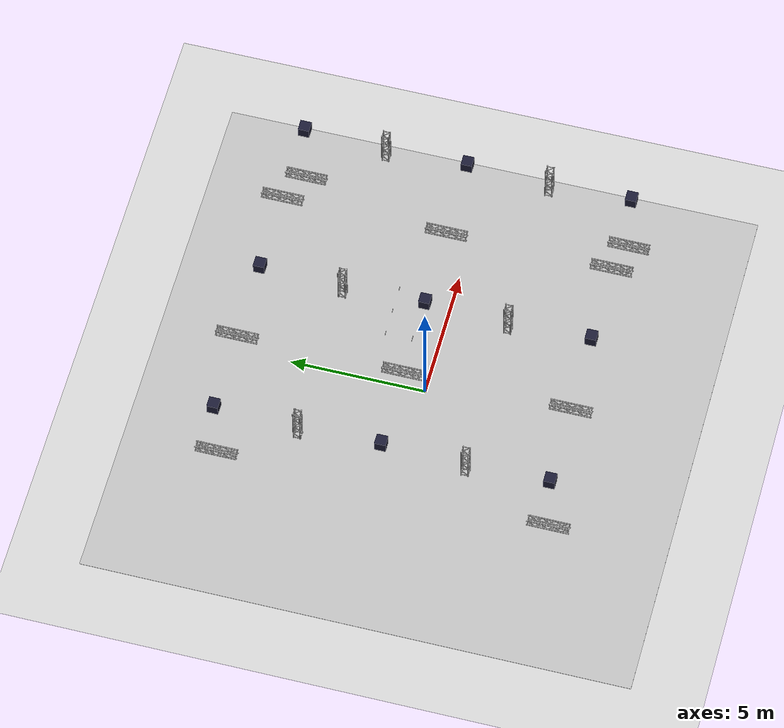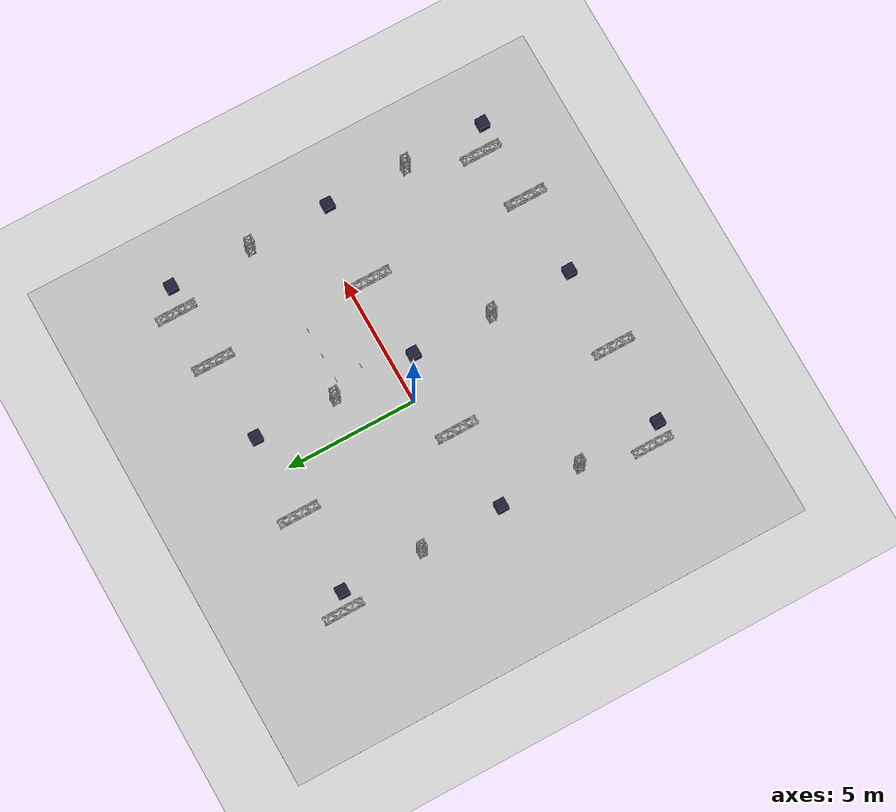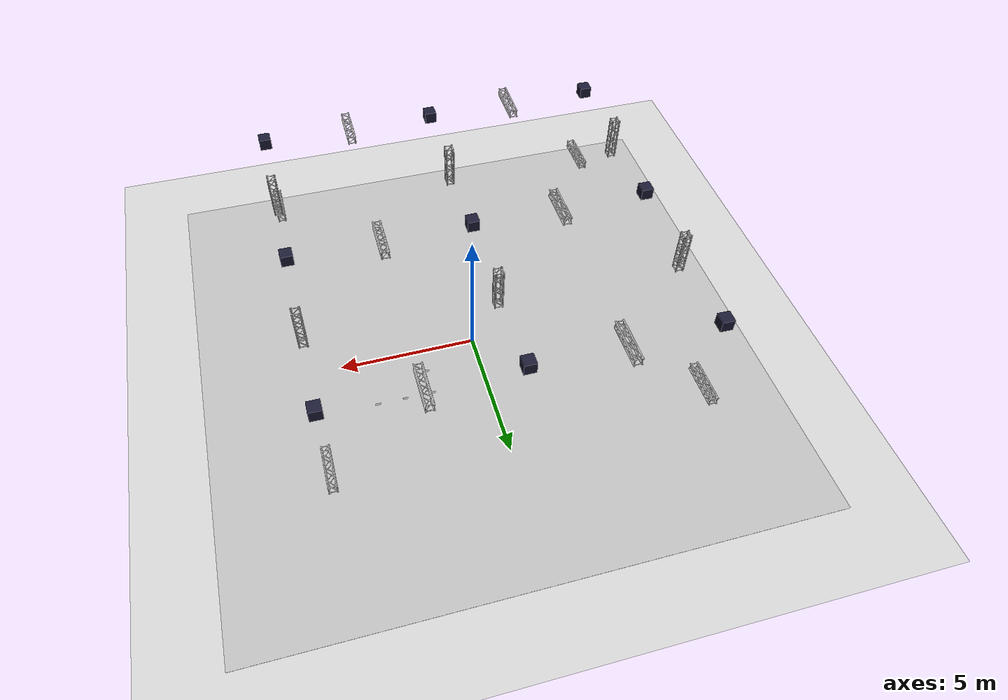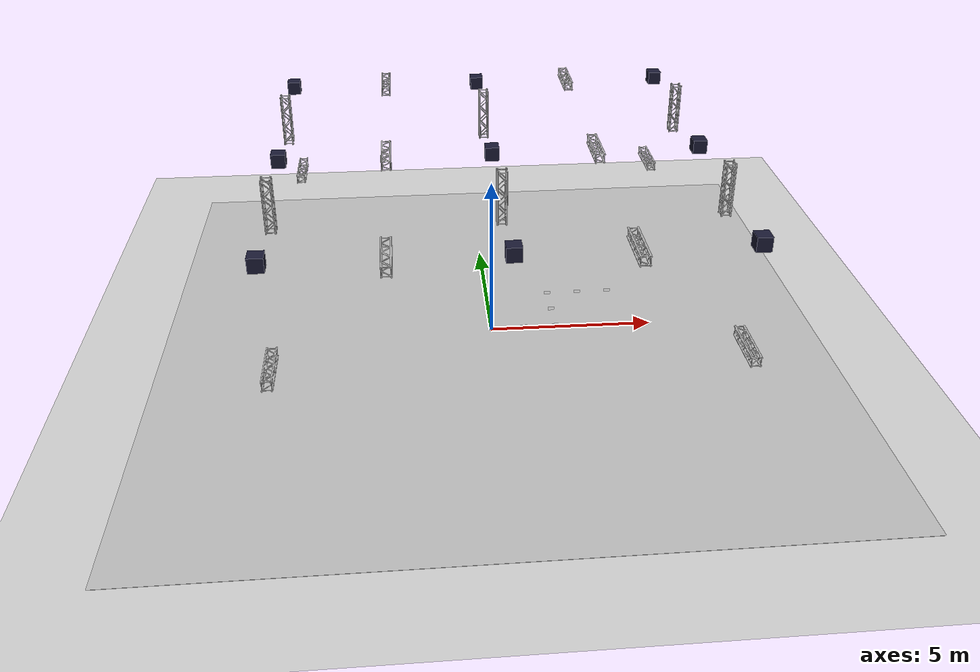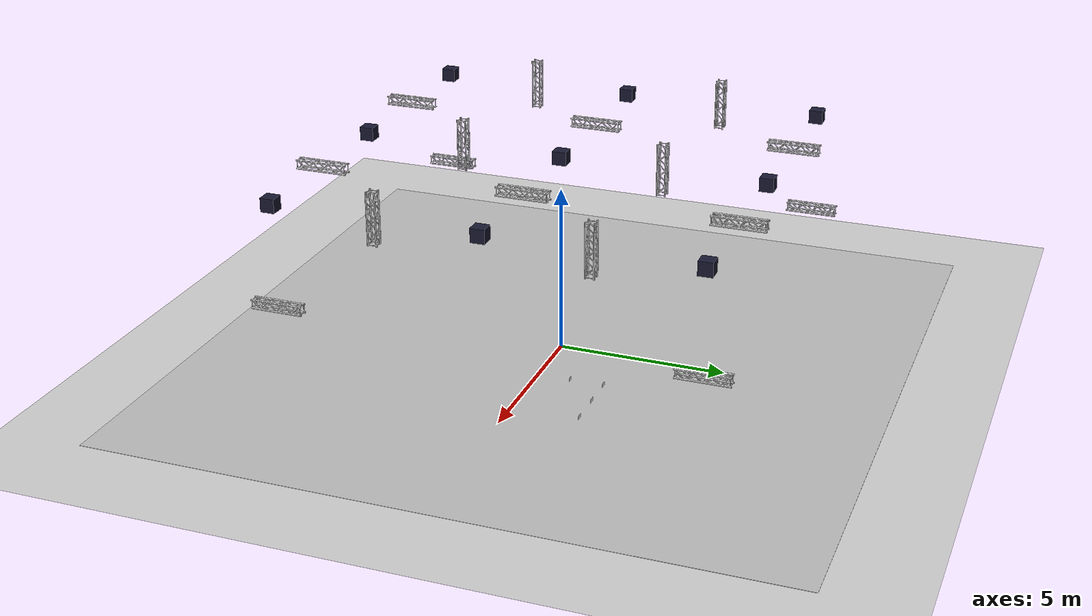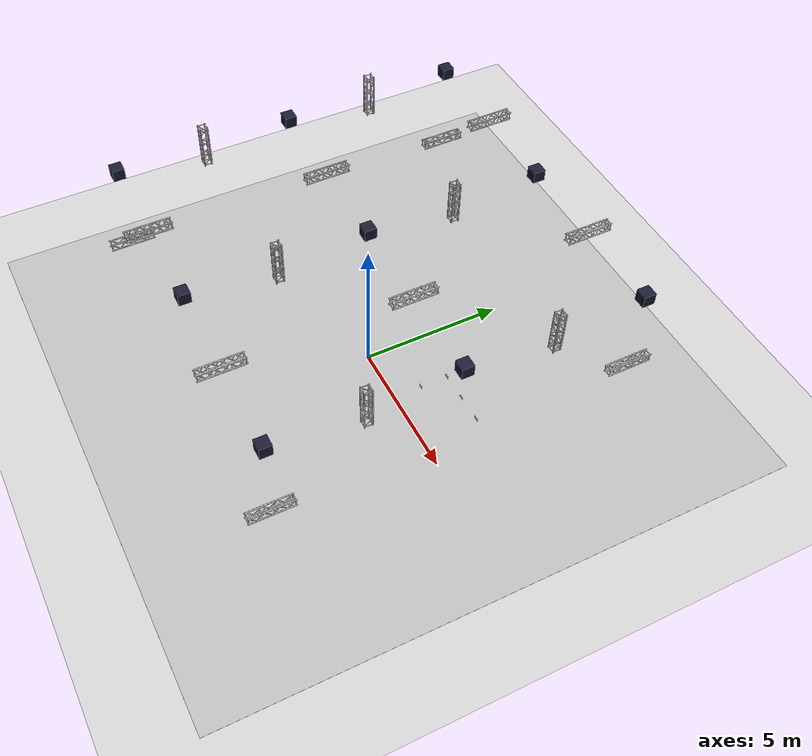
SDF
<sdf version="1.5">
 <world name="map">
  <include><uri>model://sun</uri></include>
  <include><uri>model://ground_plane</uri></include>
  <model name="aruco_0"><pose>0 0 0.03 0 0 0</pose><include><uri>model://aruco_0</uri></include></model>
  <model name="aruco_1"><pose>1 0 0.03 0 0 0</pose><include><uri>model://aruco_1</uri></include></model>
  <model name="aruco_2"><pose>2 0 0.03 0 0 0</pose><include><uri>model://aruco_2</uri></include></model>
  <model name="aruco_3"><pose>2 1 0.03 0 0 0</pose><include><uri>model://aruco_3</uri></include></model>
  <model name="aruco_4"><pose>2 2 0.03 0 0 0</pose><include><uri>model://aruco_4</uri></include></model>
  <model name="aruco_5"><pose>3 2 0.03 0 0 0</pose><include><uri>model://aruco_5</uri></include></model>
  <model name="aruco_6"><pose>4 2 0.03 0 0 0</pose><include><uri>model://aruco_6</uri></include></model>
  <model name="truss_groundplane">
   <pose>0 0 0.01 0 0 0</pose>
   <include><uri>model://truss_groundplane</uri></include>
  </model>
  <model name="stand0"><pose>6 6 3 0 0 0</pose><include><uri>model://truss</uri></include></model>
  <model name="corner0"><pose>6 6 6 0 0 0</pose><include><uri>model://truss_corner</uri></include></model>
  <model name="top01_0"><pose>6 3 6 1.57 0 0</pose><include><uri>model://truss</uri></include></model>
  <model name="top_corner01"><pose>6 0 6 0 0 0</pose><include><uri>model://truss_corner</uri></include></model>
  <model name="top01_1"><pose>6 -3 6 1.57 0 0</pose><include><uri>model://truss</uri></include></model>
  <model name="stand1"><pose>6 -6 3 0 0 0</pose><include><uri>model://truss</uri></include></model>
  <model name="corner1"><pose>6 -6 6 0 0 0</pose><include><uri>model://truss_corner</uri></include></model>
  <model name="top12_0"><pose>3 -6 6 0 1.57 0</pose><include><uri>model://truss</uri></include></model>
  <model name="top_corner12"><pose>0 -6 6 0 0 0</pose><include><uri>model://truss_corner</uri></include></model>
  <model name="top12_1"><pose>-3 -6 6 0 1.57 0</pose><include><uri>model://truss</uri></include></model>
  <model name="stand2"><pose>-6 -6 3 0 0 0</pose><include><uri>model://truss</uri></include></model>
  <model name="corner2"><pose>-6 -6 6 0 0 0</pose><include><uri>model://truss_corner</uri></include></model>
  <model name="top23_0"><pose>-6 3 6 1.57 0 0</pose><include><uri>model://truss</uri></include></model>
  <model name="top_corner23"><pose>-6 0 6 0 0 0</pose><include><uri>model://truss_corner</uri></include></model>
  <model name="top23_1"><pose>-6 -3 6 1.57 0 0</pose><include><uri>model://truss</uri></include></model>
  <model name="stand3"><pose>-6 6 3 0 0 0</pose><include><uri>model://truss</uri></include></model>
  <model name="corner3"><pose>-6 6 6 0 0 0</pose><include><uri>model://truss_corner</uri></include></model>
  <model name="top30_0"><pose>3 6 6 0 1.57 0</pose><include><uri>model://truss</uri></include></model>
  <model name="top_corner30"><pose>0 6 6 0 0 0</pose><include><uri>model://truss_corner</uri></include></model>
  <model name="top30_1"><pose>-3 6 6 0 1.57 0</pose><include><uri>model://truss</uri></include></model>
  <model name="center"><pose>0 0 6 0 0 0</pose><include><uri>model://truss_corner</uri></include></model>
  <model name="center01"><pose>3 0 6 0 1.57 0</pose><include><uri>model://truss</uri></include></model>
  <model name="center12"><pose>0 -3 6 1.57 0 0</pose><include><uri>model://truss</uri></include></model>
  <model name="center23"><pose>-3 0 6 0 1.57 0</pose><include><uri>model://truss</uri></include></model>
  <model name="center30"><pose>0 3 6 1.57 0 0</pose><include><uri>model://truss</uri></include></model>
  <scene><ambient>0.0 0.0 0.0 1.0</ambient><shadows>0</shadows></scene>
  <physics name="default_physics" default="0" type="ode">
   <gravity>0 0 -9.8066</gravity>
   <ode>
    <solver>
     <type>quick</type>
     <iters>10</iters>
     <sor>1.3</sor>
     <use_dynamic_moi_rescaling>0</use_dynamic_moi_rescaling>
    </solver>
    <constraints>
     <cfm>0</cfm>
     <erp>0.2</erp>
     <contact_max_correcting_vel>100</contact_max_correcting_vel>
     <contact_surface_layer>0.001</contact_surface_layer>
    </constraints>
   </ode>
   <max_step_size>0.004</max_step_size>
   <real_time_factor>1</real_time_factor>
   <real_time_update_rate>250</real_time_update_rate>
   <magnetic_field>6.0e-6 2.3e-5 -4.2e-5</magnetic_field>
  </physics>
 </world>
</sdf>

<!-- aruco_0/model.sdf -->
<sdf version="1.9">
  <model name="aruco_0">
    <static>true</static>

    <link name="link"><inertial><mass>1.0</mass><inertia><ixx>0.1</ixx><ixy>0</ixy><ixz>0</ixz><iyy>0.1</iyy><iyz>0</iyz><izz>0.1</izz></inertia></inertial>

      <visual name="visual">
        <pose>0 0 0 0 1.5708 0</pose>

        <geometry>
          <box>
            <size>0.20 0.001 0.20</size>
          </box>
        </geometry>

        <material>
          <ambient>1 1 1 1</ambient>
          <diffuse>1 1 1 1</diffuse>

          <pbr>
            <metal>
              <albedo_map>model://aruco_0/materials/textures/aruco_0.png</albedo_map>
            </metal>
          </pbr>
        </material>
      </visual>

    </link>
  </model>
</sdf>

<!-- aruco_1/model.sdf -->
<sdf version="1.9">
  <model name="aruco_1">
    <static>true</static>
    <link name="link"><inertial><mass>1.0</mass><inertia><ixx>0.1</ixx><ixy>0</ixy><ixz>0</ixz><iyy>0.1</iyy><iyz>0</iyz><izz>0.1</izz></inertia></inertial>
      <visual name="visual">
        <pose>0 0 0 0 1.5708 0</pose>
        <geometry>
          <box>
            <size>0.20 0.001 0.20</size>
          </box>
        </geometry>
        <material>
          <ambient>1 1 1 1</ambient>
          <diffuse>1 1 1 1</diffuse>
          <pbr>
            <metal>
              <albedo_map>model://aruco_1/materials/textures/aruco_1.png</albedo_map>
            </metal>
          </pbr>
        </material>
      </visual>
    </link>
  </model>
</sdf>

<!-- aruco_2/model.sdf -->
<sdf version="1.9">
  <model name="aruco_2">
    <static>true</static>
    <link name="link"><inertial><mass>1.0</mass><inertia><ixx>0.1</ixx><ixy>0</ixy><ixz>0</ixz><iyy>0.1</iyy><iyz>0</iyz><izz>0.1</izz></inertia></inertial>
      <visual name="visual">
        <pose>0 0 0 0 1.5708 0</pose>
        <geometry>
          <box>
            <size>0.20 0.001 0.20</size>
          </box>
        </geometry>
        <material>
          <ambient>1 1 1 1</ambient>
          <diffuse>1 1 1 1</diffuse>
          <pbr>
            <metal>
              <albedo_map>model://aruco_2/materials/textures/aruco_2.png</albedo_map>
            </metal>
          </pbr>
        </material>
      </visual>
    </link>
  </model>
</sdf>

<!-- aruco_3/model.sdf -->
<sdf version="1.9">
  <model name="aruco_3">
    <static>true</static>
    <link name="link"><inertial><mass>1.0</mass><inertia><ixx>0.1</ixx><ixy>0</ixy><ixz>0</ixz><iyy>0.1</iyy><iyz>0</iyz><izz>0.1</izz></inertia></inertial>
      <visual name="visual">
        <pose>0 0 0 0 1.5708 0</pose>
        <geometry>
          <box>
            <size>0.20 0.001 0.20</size>
          </box>
        </geometry>
        <material>
          <ambient>1 1 1 1</ambient>
          <diffuse>1 1 1 1</diffuse>
          <pbr>
            <metal>
              <albedo_map>model://aruco_3/materials/textures/aruco_3.png</albedo_map>
            </metal>
          </pbr>
        </material>
      </visual>
    </link>
  </model>
</sdf>

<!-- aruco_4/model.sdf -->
<sdf version="1.9">
  <model name="aruco_4">
    <static>true</static>
    <link name="link"><inertial><mass>1.0</mass><inertia><ixx>0.1</ixx><ixy>0</ixy><ixz>0</ixz><iyy>0.1</iyy><iyz>0</iyz><izz>0.1</izz></inertia></inertial>
      <visual name="visual">
        <pose>0 0 0 0 1.5708 0</pose>
        <geometry>
          <box>
            <size>0.20 0.001 0.20</size>
          </box>
        </geometry>
        <material>
          <ambient>1 1 1 1</ambient>
          <diffuse>1 1 1 1</diffuse>
          <pbr>
            <metal>
              <albedo_map>model://aruco_4/materials/textures/aruco_4.png</albedo_map>
            </metal>
          </pbr>
        </material>
      </visual>
    </link>
  </model>
</sdf>

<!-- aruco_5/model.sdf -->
<sdf version="1.9">
  <model name="aruco_5">
    <static>true</static>
    <link name="link"><inertial><mass>1.0</mass><inertia><ixx>0.1</ixx><ixy>0</ixy><ixz>0</ixz><iyy>0.1</iyy><iyz>0</iyz><izz>0.1</izz></inertia></inertial>
      <visual name="visual">
        <pose>0 0 0 0 1.5708 0</pose>
        <geometry>
          <box>
            <size>0.20 0.001 0.20</size>
          </box>
        </geometry>
        <material>
          <ambient>1 1 1 1</ambient>
          <diffuse>1 1 1 1</diffuse>
          <pbr>
            <metal>
              <albedo_map>model://aruco_5/materials/textures/aruco_5.png</albedo_map>
            </metal>
          </pbr>
        </material>
      </visual>
    </link>
  </model>
</sdf>

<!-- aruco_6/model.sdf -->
<sdf version="1.9">
  <model name="aruco_6">
    <static>true</static>
    <link name="link"><inertial><mass>1.0</mass><inertia><ixx>0.1</ixx><ixy>0</ixy><ixz>0</ixz><iyy>0.1</iyy><iyz>0</iyz><izz>0.1</izz></inertia></inertial>
      <visual name="visual">
        <pose>0 0 0 0 1.5708 0</pose>
        <geometry>
          <box>
            <size>0.20 0.001 0.20</size>
          </box>
        </geometry>
        <material>
          <ambient>1 1 1 1</ambient>
          <diffuse>1 1 1 1</diffuse>
          <pbr>
            <metal>
              <albedo_map>model://aruco_6/materials/textures/aruco_6.png</albedo_map>
            </metal>
          </pbr>
        </material>
      </visual>
    </link>
  </model>
</sdf>

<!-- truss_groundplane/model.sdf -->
<sdf version="1.6">
  <model name="truss_groundplane">
    <static>true</static>
    <link name="link">
      <pose>0 0 0 0 0 0</pose>

      <collision name="collision">
      <pose>0 0 0 0 0 0</pose>
        <geometry>
          <box>
            <size>20 20 0.01</size>
          </box>
        </geometry>
      </collision>

      <visual name="truss_groundplane">
        <geometry>
          <box>
            <size>20 20 0.01</size>
          </box>
        </geometry>
     </visual>
    </link>
  </model>
</sdf>

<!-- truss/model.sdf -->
<sdf version="1.5">
  <model name="truss">
  <static>true</static>
    <link name="link">
      <inertial>
        <mass>20.7307</mass>
        <inertia>
          <ixx>4.7978</ixx>
          <ixy>0.0</ixy>
          <ixz>0.0</ixz>
          <iyy>0.4699</iyy>
          <iyz>-0.002</iyz>
          <izz>4.7978</izz>
        </inertia>
      </inertial>
      <collision name="collision">
        <geometry>
          <mesh>
            <uri>model://models/truss/meshes/truss.dae</uri>
          </mesh>
        </geometry>
        <surface>
          <bounce>
            <restitution_coefficient>0.0</restitution_coefficient>
            <threshold>100000</threshold>
          </bounce>
          <friction>
            <ode>
              <mu>10</mu>
              <mu2>10</mu2>
            </ode>
          </friction>
        </surface>
      </collision>
      <visual name="visual">
        <geometry>
          <mesh>
            <uri>model://models/truss//meshes/truss.dae</uri>
          </mesh>
        </geometry>
      </visual>
    </link>
  </model>
</sdf>

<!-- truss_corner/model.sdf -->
<sdf version="1.6">
  <model name="truss_corner">
    <static>true</static>
    <link name="link">
      <pose>0 0 0 0 0 0</pose>

      <collision name="collision">
      <pose>0 0 0 0 0 0</pose>
        <geometry>
          <box>
            <size>0.4 0.4 0.4</size>
          </box>
        </geometry>
      </collision>

      <visual name="truss">
        <geometry>
          <box>
            <size>0.4 0.4 0.4</size>
          </box>
        </geometry>
        <material> <!-- Wheel material -->
          <ambient>0.1 0.1 0.1 1</ambient>
          <diffuse>0.1 0.1 0.2 1</diffuse>
          <specular>0 0 0 0</specular>
          <emissive>0 0 0 1</emissive>
        </material> <!-- End wheel material -->
     </visual>
    </link>
  </model>
</sdf>
